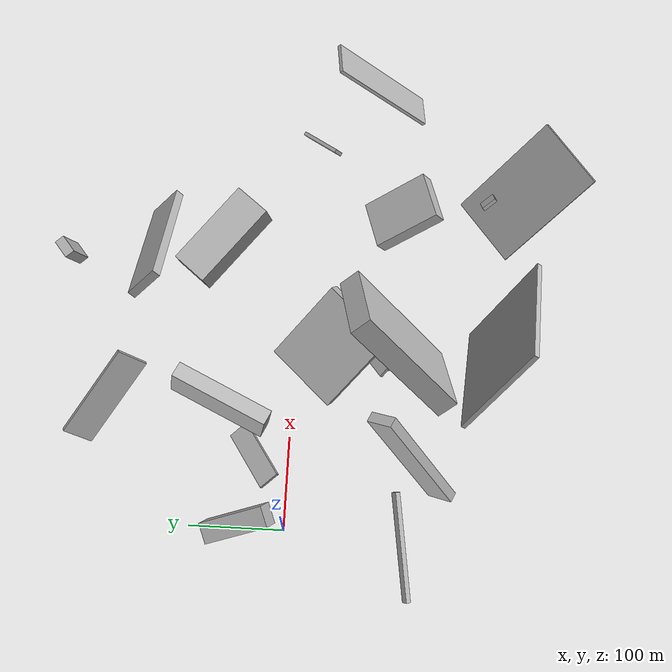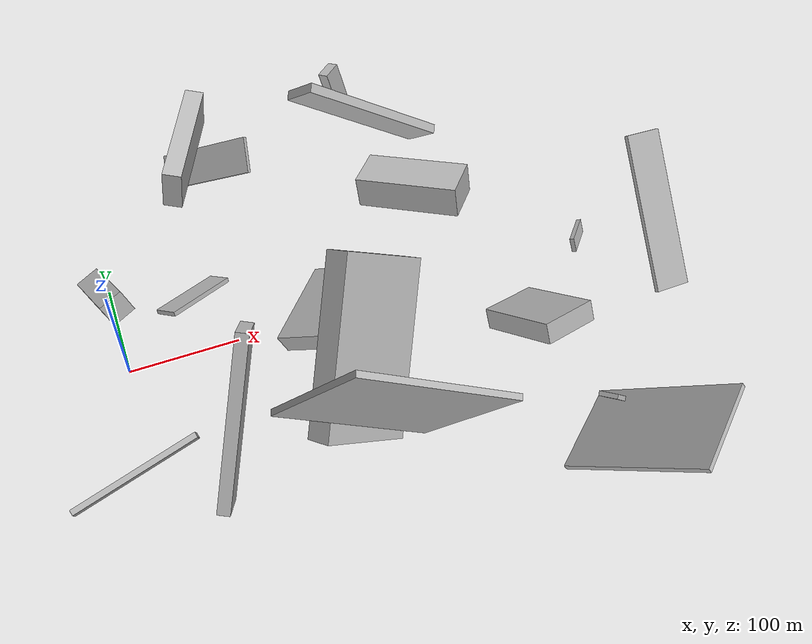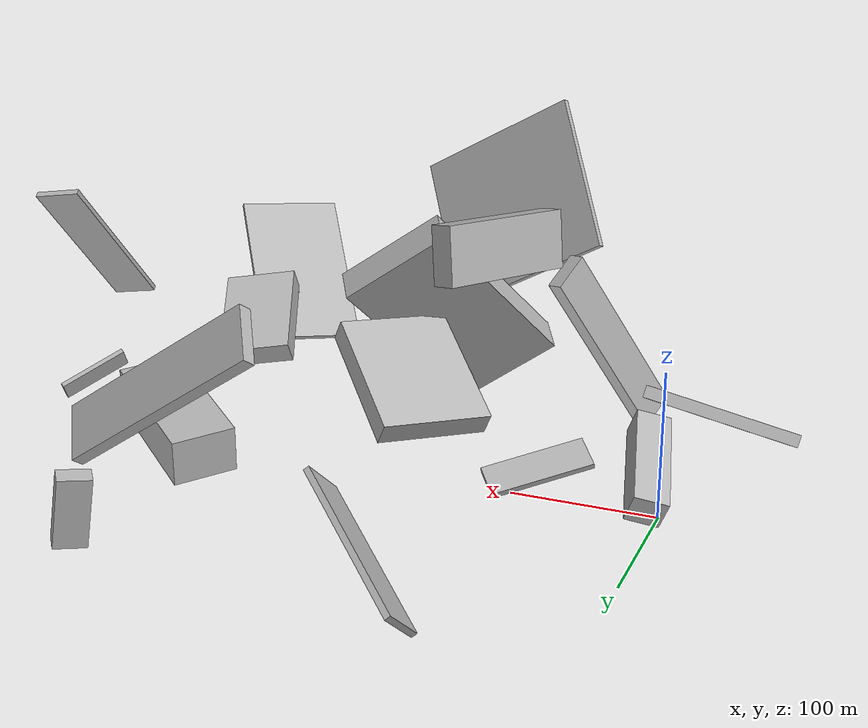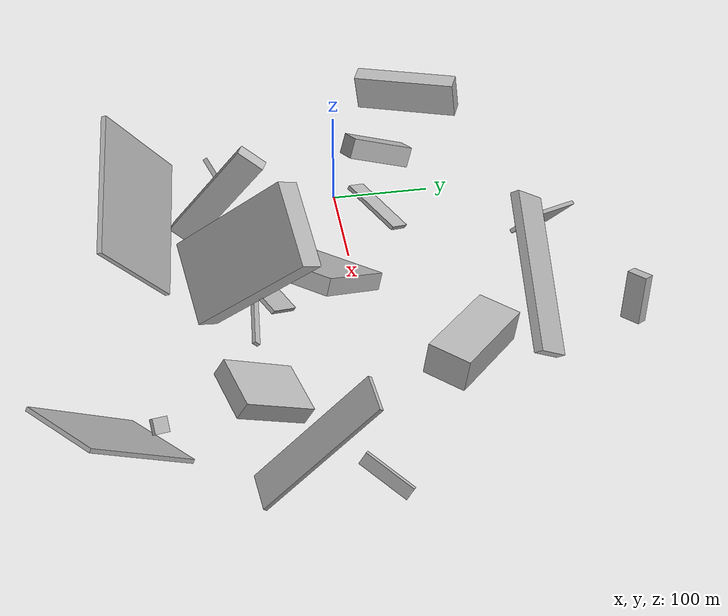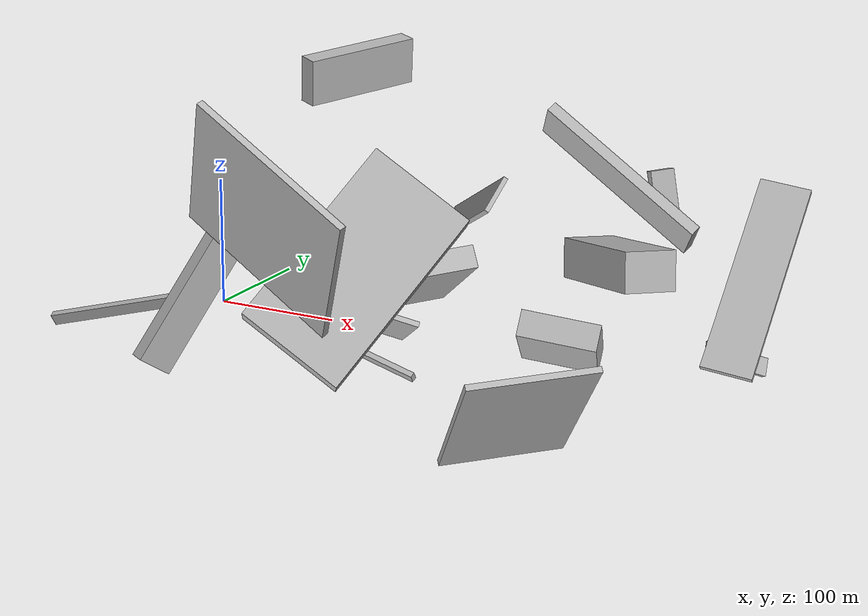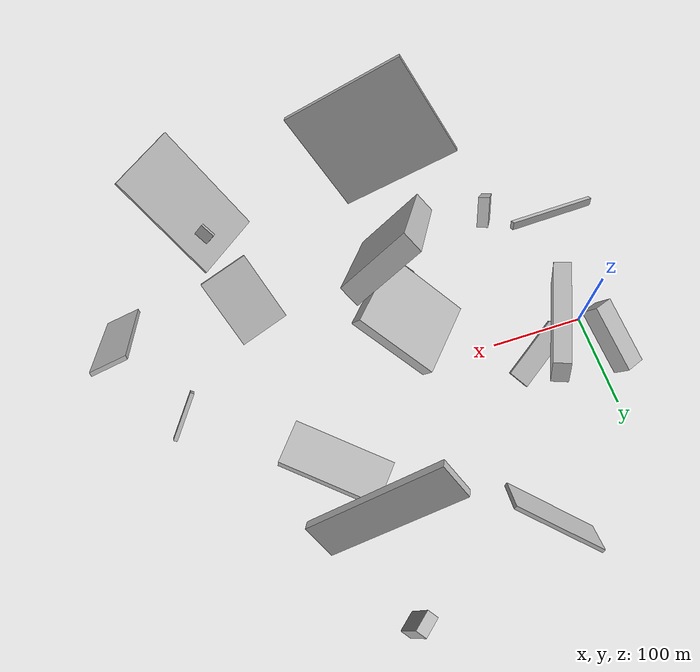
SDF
<sdf version="1.6">
 <world name="default">
  <scene>
   <sky><clouds><speed>12</speed></clouds></sky>
   <ambient>0.4 0.4 0.4 1</ambient>
   <background>0.7 0.7 0.7 1</background>
   <shadows>1</shadows>
  </scene>
  <gravity>0 0 -9.8066</gravity>
  <magnetic_field>6e-06 2.3e-05 -4.2e-05</magnetic_field>
  <physics default="0" name="default_physics" type="ode">
   <ode>
    <solver>
     <type>quick</type>
     <iters>10</iters>
     <sor>1.0</sor>
     <use_dynamic_moi_rescaling>0</use_dynamic_moi_rescaling>
    </solver>
    <constraints>
     <cfm>0</cfm>
     <erp>0.2</erp>
     <contact_max_correcting_vel>100</contact_max_correcting_vel>
     <contact_surface_layer>0.001</contact_surface_layer>
    </constraints>
   </ode>
   <max_step_size>0.004</max_step_size>
   <real_time_factor>1</real_time_factor>
   <real_time_update_rate>250</real_time_update_rate>
  </physics>
  <light name="sun" type="directional">
   <pose>0 0 10 0 0 0</pose>
   <diffuse>0.8 0.8 0.8 1</diffuse>
   <specular>0.2 0.2 0.2 1</specular>
   <attenuation>
    <range>1000</range>
    <constant>0.9</constant>
    <linear>0.01</linear>
    <quadratic>0.001</quadratic>
   </attenuation>
   <direction>-0.5 0.1 -0.9</direction>
  </light>
  <model name="building_1">
   <static>0</static>
   <pose>274.9617142537169 246.51547680929878 63.03134899164874 1.3511236220329765 -0.10263859358813648 0.6812530016008046</pose>
   <link name="link">
    <gravity>0</gravity>
    <pose>0 0 5.5 0 0 0</pose>
    <collision name="collision"><geometry><box><size>20 47 11</size></box></geometry></collision>
    <visual name="visual">
     <cast_shadows>0</cast_shadows>
     <geometry><box><size>20 47 11</size></box></geometry>
     <material>
      <script>
       <uri>model://HANNAS_wall/materials/scripts</uri>
       <uri>model://HANNAS_wall/materials/textures</uri>
       <name>vrc/HANNAS_wall</name>
      </script>
     </material>
    </visual>
   </link>
  </model>
  <model name="building_2">
   <static>0</static>
   <pose>463.80093220485446 -128.9286477248211 59.847896076108164 -0.18060532157555004 -0.7249801153672325 -1.3388554080399306</pose>
   <link name="link">
    <gravity>0</gravity>
    <pose>0 0 69.0 0 0 0</pose>
    <collision name="collision"><geometry><box><size>4 34 138</size></box></geometry></collision>
    <visual name="visual">
     <cast_shadows>0</cast_shadows>
     <geometry><box><size>4 34 138</size></box></geometry>
     <material>
      <script>
       <uri>model://HANNAS_wall/materials/scripts</uri>
       <uri>model://HANNAS_wall/materials/textures</uri>
       <name>vrc/HANNAS_wall</name>
      </script>
     </material>
    </visual>
   </link>
  </model>
  <model name="building_3">
   <static>0</static>
   <pose>339.13895165444654 144.50872610435522 60.62425506315662 0.8277509104420155 0.5891588071682033 -2.0597691429927205</pose>
   <link name="link">
    <gravity>0</gravity>
    <pose>0 0 75.0 0 0 0</pose>
    <collision name="collision"><geometry><box><size>9 39 150</size></box></geometry></collision>
    <visual name="visual">
     <cast_shadows>0</cast_shadows>
     <geometry><box><size>9 39 150</size></box></geometry>
     <material>
      <script>
       <uri>model://HANNAS_wall/materials/scripts</uri>
       <uri>model://HANNAS_wall/materials/textures</uri>
       <name>vrc/HANNAS_wall</name>
      </script>
     </material>
    </visual>
   </link>
  </model>
  <model name="building_4">
   <static>0</static>
   <pose>212.2380217122411 -79.13063668008795 32.77884349569572 -1.1543761937297354 0.5420065540566387 2.4042146535602256</pose>
   <link name="link">
    <gravity>0</gravity>
    <pose>0 0 25.0 0 0 0</pose>
    <collision name="collision"><geometry><box><size>40 4 50</size></box></geometry></collision>
    <visual name="visual">
     <cast_shadows>0</cast_shadows>
     <geometry><box><size>40 4 50</size></box></geometry>
     <material>
      <script>
       <uri>model://HANNAS_wall/materials/scripts</uri>
       <uri>model://HANNAS_wall/materials/textures</uri>
       <name>vrc/HANNAS_wall</name>
      </script>
     </material>
    </visual>
   </link>
  </model>
  <model name="building_5">
   <static>0</static>
   <pose>214.94474653246562 -11.348450789445941 59.09587206003005 1.661948902370546 -0.5289742146888355 -0.790387712787367</pose>
   <link name="link">
    <gravity>0</gravity>
    <pose>0 0 40.5 0 0 0</pose>
    <collision name="collision"><geometry><box><size>95 17 81</size></box></geometry></collision>
    <visual name="visual">
     <cast_shadows>0</cast_shadows>
     <geometry><box><size>95 17 81</size></box></geometry>
     <material>
      <script>
       <uri>model://HANNAS_wall/materials/scripts</uri>
       <uri>model://HANNAS_wall/materials/textures</uri>
       <name>vrc/HANNAS_wall</name>
      </script>
     </material>
    </visual>
   </link>
  </model>
  <model name="building_6">
   <static>0</static>
   <pose>404.62534267990145 -219.79783602089498 56.405846030700964 1.665280517704308 -0.7123225189199163 -0.9441760929556385</pose>
   <link name="link">
    <gravity>0</gravity>
    <pose>0 0 40.5 0 0 0</pose>
    <collision name="collision"><geometry><box><size>134 4 81</size></box></geometry></collision>
    <visual name="visual">
     <cast_shadows>0</cast_shadows>
     <geometry><box><size>134 4 81</size></box></geometry>
     <material>
      <script>
       <uri>model://HANNAS_wall/materials/scripts</uri>
       <uri>model://HANNAS_wall/materials/textures</uri>
       <name>vrc/HANNAS_wall</name>
      </script>
     </material>
    </visual>
   </link>
  </model>
  <model name="building_7">
   <static>0</static>
   <pose>317.851200445912 97.73282026974857 51.96459798589364 1.1687126498786289 1.4010000940941238 -1.1035298564318428</pose>
   <link name="link">
    <gravity>0</gravity>
    <pose>0 0 21.0 0 0 0</pose>
    <collision name="collision"><geometry><box><size>31 101 42</size></box></geometry></collision>
    <visual name="visual">
     <cast_shadows>0</cast_shadows>
     <geometry><box><size>31 101 42</size></box></geometry>
     <material>
      <script>
       <uri>model://HANNAS_wall/materials/scripts</uri>
       <uri>model://HANNAS_wall/materials/textures</uri>
       <name>vrc/HANNAS_wall</name>
      </script>
     </material>
    </visual>
   </link>
  </model>
  <model name="building_8">
   <static>0</static>
   <pose>65.68301218403286 -139.62330363856762 75.55153194965423 -2.9424992457026957 -0.9579821364905825 0.9668558271971802</pose>
   <link name="link">
    <gravity>0</gravity>
    <pose>0 0 14.5 0 0 0</pose>
    <collision name="collision"><geometry><box><size>150 11 29</size></box></geometry></collision>
    <visual name="visual">
     <cast_shadows>0</cast_shadows>
     <geometry><box><size>150 11 29</size></box></geometry>
     <material>
      <script>
       <uri>model://HANNAS_wall/materials/scripts</uri>
       <uri>model://HANNAS_wall/materials/textures</uri>
       <name>vrc/HANNAS_wall</name>
      </script>
     </material>
    </visual>
   </link>
  </model>
  <model name="building_9">
   <static>0</static>
   <pose>7.967726074386699 49.18046420395487 58.038745518936445 1.854267112693414 -0.4256829438560551 -1.3282579434437933</pose>
   <link name="link">
    <gravity>0</gravity>
    <pose>0 0 11.0 0 0 0</pose>
    <collision name="collision"><geometry><box><size>71 21 22</size></box></geometry></collision>
    <visual name="visual">
     <cast_shadows>0</cast_shadows>
     <geometry><box><size>71 21 22</size></box></geometry>
     <material>
      <script>
       <uri>model://HANNAS_wall/materials/scripts</uri>
       <uri>model://HANNAS_wall/materials/textures</uri>
       <name>vrc/HANNAS_wall</name>
      </script>
     </material>
    </visual>
   </link>
  </model>
  <model name="building_10">
   <static>0</static>
   <pose>190.51350766830814 -118.81850281774639 88.40572634731285 2.159854882048259 -0.6028678678874501 -2.948131651117761</pose>
   <link name="link">
    <gravity>0</gravity>
    <pose>0 0 12.0 0 0 0</pose>
    <collision name="collision"><geometry><box><size>83 150 24</size></box></geometry></collision>
    <visual name="visual">
     <cast_shadows>0</cast_shadows>
     <geometry><box><size>83 150 24</size></box></geometry>
     <material>
      <script>
       <uri>model://HANNAS_wall/materials/scripts</uri>
       <uri>model://HANNAS_wall/materials/textures</uri>
       <name>vrc/HANNAS_wall</name>
      </script>
     </material>
    </visual>
   </link>
  </model>
  <model name="building_11">
   <static>0</static>
   <pose>228.30039834781184 -214.3120953263525 107.60957273517081 0.6287146871547397 -0.9142909238863342 -0.8688242102011515</pose>
   <link name="link">
    <gravity>0</gravity>
    <pose>0 0 66.0 0 0 0</pose>
    <collision name="collision"><geometry><box><size>119 5 132</size></box></geometry></collision>
    <visual name="visual">
     <cast_shadows>0</cast_shadows>
     <geometry><box><size>119 5 132</size></box></geometry>
     <material>
      <script>
       <uri>model://HANNAS_wall/materials/scripts</uri>
       <uri>model://HANNAS_wall/materials/textures</uri>
       <name>vrc/HANNAS_wall</name>
      </script>
     </material>
    </visual>
   </link>
  </model>
  <model name="building_12">
   <static>0</static>
   <pose>432.0835781348694 -17.867036123685498 29.845200128788967 0.8175055179935394 -1.0305504747556384 1.7100567354198992</pose>
   <link name="link">
    <gravity>0</gravity>
    <pose>0 0 2.0 0 0 0</pose>
    <collision name="collision"><geometry><box><size>13 51 4</size></box></geometry></collision>
    <visual name="visual">
     <cast_shadows>0</cast_shadows>
     <geometry><box><size>13 51 4</size></box></geometry>
     <material>
      <script>
       <uri>model://HANNAS_wall/materials/scripts</uri>
       <uri>model://HANNAS_wall/materials/textures</uri>
       <name>vrc/HANNAS_wall</name>
      </script>
     </material>
    </visual>
   </link>
  </model>
  <model name="building_13">
   <static>0</static>
   <pose>367.9189594549494 -104.49364798004237 52.39099016622484 -1.2995096068706262 -1.017074838651691 1.6235272276316886</pose>
   <link name="link">
    <gravity>0</gravity>
    <pose>0 0 26.5 0 0 0</pose>
    <collision name="collision"><geometry><box><size>18 75 53</size></box></geometry></collision>
    <visual name="visual">
     <cast_shadows>0</cast_shadows>
     <geometry><box><size>18 75 53</size></box></geometry>
     <material>
      <script>
       <uri>model://HANNAS_wall/materials/scripts</uri>
       <uri>model://HANNAS_wall/materials/textures</uri>
       <name>vrc/HANNAS_wall</name>
      </script>
     </material>
    </visual>
   </link>
  </model>
  <model name="building_14">
   <static>0</static>
   <pose>122.50350831787398 193.01749850897966 46.85857620254601 2.300028547417315 0.4767682752385363 2.4760199468032127</pose>
   <link name="link">
    <gravity>0</gravity>
    <pose>0 0 2.0 0 0 0</pose>
    <collision name="collision"><geometry><box><size>107 35 4</size></box></geometry></collision>
    <visual name="visual">
     <cast_shadows>0</cast_shadows>
     <geometry><box><size>107 35 4</size></box></geometry>
     <material>
      <script>
       <uri>model://HANNAS_wall/materials/scripts</uri>
       <uri>model://HANNAS_wall/materials/textures</uri>
       <name>vrc/HANNAS_wall</name>
      </script>
     </material>
    </visual>
   </link>
  </model>
  <model name="building_15">
   <static>0</static>
   <pose>201.69381748614637 -107.55251174220878 15.289147207502388 -0.8785507071362688 0.2239167081710187 -0.08427790095590065</pose>
   <link name="link">
    <gravity>0</gravity>
    <pose>0 0 2.0 0 0 0</pose>
    <collision name="collision"><geometry><box><size>57 7 4</size></box></geometry></collision>
    <visual name="visual">
     <cast_shadows>0</cast_shadows>
     <geometry><box><size>57 7 4</size></box></geometry>
     <material>
      <script>
       <uri>model://HANNAS_wall/materials/scripts</uri>
       <uri>model://HANNAS_wall/materials/textures</uri>
       <name>vrc/HANNAS_wall</name>
      </script>
     </material>
    </visual>
   </link>
  </model>
  <model name="building_16">
   <static>0</static>
   <pose>-13.644287933815555 -123.69962085111214 25.77453381651584 0.5751552023941225 -1.1001817564655705 -1.94754314494214</pose>
   <link name="link">
    <gravity>0</gravity>
    <pose>0 0 2.5 0 0 0</pose>
    <collision name="collision"><geometry><box><size>9 112 5</size></box></geometry></collision>
    <visual name="visual">
     <cast_shadows>0</cast_shadows>
     <geometry><box><size>9 112 5</size></box></geometry>
     <material>
      <script>
       <uri>model://HANNAS_wall/materials/scripts</uri>
       <uri>model://HANNAS_wall/materials/textures</uri>
       <name>vrc/HANNAS_wall</name>
      </script>
     </material>
    </visual>
   </link>
  </model>
  <model name="building_17">
   <static>0</static>
   <pose>90.01460721455726 59.608873398632284 169.56829038927467 0.15239974681290716 -0.0778833955970856 1.1375498993975648</pose>
   <link name="link">
    <gravity>0</gravity>
    <pose>0 0 18.0 0 0 0</pose>
    <collision name="collision"><geometry><box><size>95 15 36</size></box></geometry></collision>
    <visual name="visual">
     <cast_shadows>0</cast_shadows>
     <geometry><box><size>95 15 36</size></box></geometry>
     <material>
      <script>
       <uri>model://HANNAS_wall/materials/scripts</uri>
       <uri>model://HANNAS_wall/materials/textures</uri>
       <name>vrc/HANNAS_wall</name>
      </script>
     </material>
    </visual>
   </link>
  </model>
  <model name="building_18">
   <static>0</static>
   <pose>71.50364524957011 33.11175520062116 35.821888978274885 0.2473981734004504 0.41057654274797606 2.246531276560592</pose>
   <link name="link">
    <gravity>0</gravity>
    <pose>0 0 2.0 0 0 0</pose>
    <collision name="collision"><geometry><box><size>23 68 4</size></box></geometry></collision>
    <visual name="visual">
     <cast_shadows>0</cast_shadows>
     <geometry><box><size>23 68 4</size></box></geometry>
     <material>
      <script>
       <uri>model://HANNAS_wall/materials/scripts</uri>
       <uri>model://HANNAS_wall/materials/textures</uri>
       <name>vrc/HANNAS_wall</name>
      </script>
     </material>
    </visual>
   </link>
  </model>
  <model name="building_19">
   <static>0</static>
   <pose>367.57377276043735 -204.1219420630823 43.634580331600276 -0.5240762051122851 -0.6232042991240984 0.9385866276613836</pose>
   <link name="link">
    <gravity>0</gravity>
    <pose>0 0 7.0 0 0 0</pose>
    <collision name="collision"><geometry><box><size>4 17 14</size></box></geometry></collision>
    <visual name="visual">
     <cast_shadows>0</cast_shadows>
     <geometry><box><size>4 17 14</size></box></geometry>
     <material>
      <script>
       <uri>model://HANNAS_wall/materials/scripts</uri>
       <uri>model://HANNAS_wall/materials/textures</uri>
       <name>vrc/HANNAS_wall</name>
      </script>
     </material>
    </visual>
   </link>
  </model>
 </world>
</sdf>
